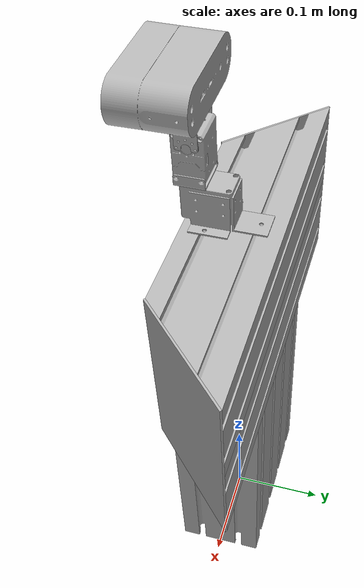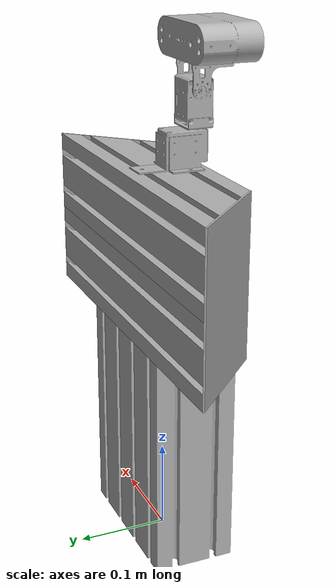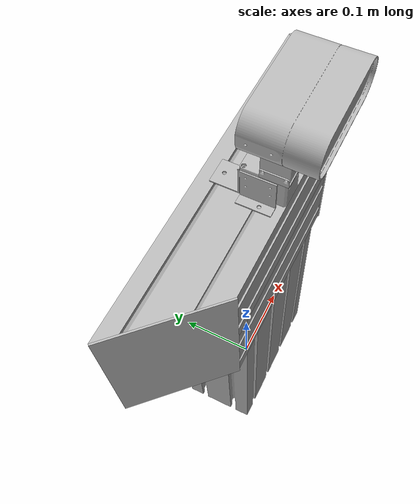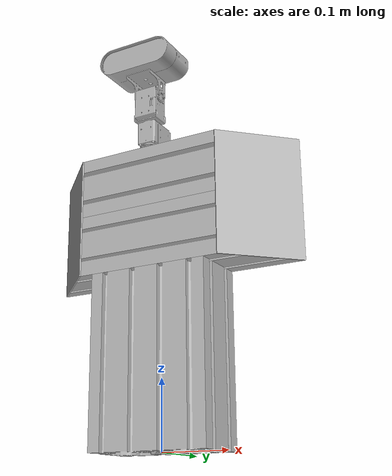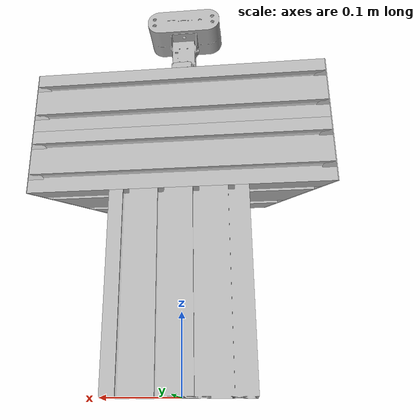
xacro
<?xml version="1.0" ?>
<robot name="no_arm_isaac" xmlns:xacro="http://www.ros.org/wiki/xacro">

<xacro:include filename="$(find no_arm_isaac_description)/urdf/materials.xacro" />
<xacro:include filename="$(find no_arm_isaac_description)/urdf/no_arm_isaac.trans" />
<xacro:include filename="$(find no_arm_isaac_description)/urdf/no_arm_isaac.gazebo" />
<link name="base_link">
  <inertial>
    <origin xyz="-1.1199098829630538e-09 -7.816768965557578e-10 0.12500000000153696" rpy="0 0 0"/>
    <mass value="7.696230008793844"/>
    <inertia ixx="0.047505" iyy="0.06309" izz="0.030426" ixy="0.0" iyz="0.0" ixz="-0.0"/>
  </inertial>
  <visual>
    <origin xyz="0 0 0" rpy="0 0 0"/>
    <geometry>
      <mesh filename="file://$(find no_arm_isaac_description)/meshes/base_link.stl" scale="0.001 0.001 0.001"/>
    </geometry>
    <material name="silver"/>
  </visual>
  <collision>
    <origin xyz="0 0 0" rpy="0 0 0"/>
    <geometry>
      <mesh filename="file://$(find no_arm_isaac_description)/meshes/base_link.stl" scale="0.001 0.001 0.001"/>
    </geometry>
  </collision>
</link>

<link name="under_body_1">
  <inertial>
    <origin xyz="-5.013647926527235e-08 0.00622055079965131 0.04499999302709212" rpy="0 0 0"/>
    <mass value="4.771661651159625"/>
    <inertia ixx="0.009017" iyy="0.047415" izz="0.04723" ixy="-0.0" iyz="-0.0" ixz="0.0"/>
  </inertial>
  <visual>
    <origin xyz="-0.0 0.0 -0.25" rpy="0 0 0"/>
    <geometry>
      <mesh filename="file://$(find no_arm_isaac_description)/meshes/under_body_1.stl" scale="0.001 0.001 0.001"/>
    </geometry>
    <material name="silver"/>
  </visual>
  <collision>
    <origin xyz="-0.0 0.0 -0.25" rpy="0 0 0"/>
    <geometry>
      <mesh filename="file://$(find no_arm_isaac_description)/meshes/under_body_1.stl" scale="0.001 0.001 0.001"/>
    </geometry>
  </collision>
</link>

<link name="upper_body_1">
  <inertial>
    <origin xyz="-9.306588989029795e-15 0.006220550236925543 0.04499999920685571" rpy="0 0 0"/>
    <mass value="4.771662083263037"/>
    <inertia ixx="0.009017" iyy="0.047415" izz="0.04723" ixy="0.0" iyz="-0.0" ixz="0.0"/>
  </inertial>
  <visual>
    <origin xyz="0.0 -0.0 -0.34" rpy="0 0 0"/>
    <geometry>
      <mesh filename="file://$(find no_arm_isaac_description)/meshes/upper_body_1.stl" scale="0.001 0.001 0.001"/>
    </geometry>
    <material name="silver"/>
  </visual>
  <collision>
    <origin xyz="0.0 -0.0 -0.34" rpy="0 0 0"/>
    <geometry>
      <mesh filename="file://$(find no_arm_isaac_description)/meshes/upper_body_1.stl" scale="0.001 0.001 0.001"/>
    </geometry>
  </collision>
</link>

<link name="right_arm_1">
  <inertial>
    <origin xyz="-0.0007070887026282835 -0.000707106780450988 2.1871393585115584e-14" rpy="0 0 0"/>
    <mass value="0.3596940231860905"/>
    <inertia ixx="0.001214" iyy="0.001214" izz="0.000486" ixy="0.000243" iyz="-0.0" ixz="-0.0"/>
  </inertial>
  <visual>
    <origin xyz="0.155 -0.0 -0.34" rpy="0 0 0"/>
    <geometry>
      <mesh filename="file://$(find no_arm_isaac_description)/meshes/right_arm_1.stl" scale="0.001 0.001 0.001"/>
    </geometry>
    <material name="silver"/>
  </visual>
  <collision>
    <origin xyz="0.155 -0.0 -0.34" rpy="0 0 0"/>
    <geometry>
      <mesh filename="file://$(find no_arm_isaac_description)/meshes/right_arm_1.stl" scale="0.001 0.001 0.001"/>
    </geometry>
  </collision>
</link>

<link name="left_arm_1">
  <inertial>
    <origin xyz="0.0007070887026179862 -0.0007071067804561445 2.015054789694659e-14" rpy="0 0 0"/>
    <mass value="0.359751805477637"/>
    <inertia ixx="0.001214" iyy="0.001214" izz="0.000486" ixy="-0.000243" iyz="-0.0" ixz="-0.0"/>
  </inertial>
  <visual>
    <origin xyz="-0.155 -0.0 -0.34" rpy="0 0 0"/>
    <geometry>
      <mesh filename="file://$(find no_arm_isaac_description)/meshes/left_arm_1.stl" scale="0.001 0.001 0.001"/>
    </geometry>
    <material name="silver"/>
  </visual>
  <collision>
    <origin xyz="-0.155 -0.0 -0.34" rpy="0 0 0"/>
    <geometry>
      <mesh filename="file://$(find no_arm_isaac_description)/meshes/left_arm_1.stl" scale="0.001 0.001 0.001"/>
    </geometry>
  </collision>
</link>

<link name="under_neck_1">
  <inertial>
    <origin xyz="4.102805954806092e-11 -0.047894475375877724 0.021824682493119807" rpy="0 0 0"/>
    <mass value="0.40441713327413076"/>
    <inertia ixx="0.000136" iyy="8.2e-05" izz="0.000121" ixy="-0.0" iyz="1.1e-05" ixz="0.0"/>
  </inertial>
  <visual>
    <origin xyz="0.0 -0.0266 -0.43" rpy="0 0 0"/>
    <geometry>
      <mesh filename="file://$(find no_arm_isaac_description)/meshes/under_neck_1.stl" scale="0.001 0.001 0.001"/>
    </geometry>
    <material name="silver"/>
  </visual>
  <collision>
    <origin xyz="0.0 -0.0266 -0.43" rpy="0 0 0"/>
    <geometry>
      <mesh filename="file://$(find no_arm_isaac_description)/meshes/under_neck_1.stl" scale="0.001 0.001 0.001"/>
    </geometry>
  </collision>
</link>

<link name="uppper_neck_1">
  <inertial>
    <origin xyz="-0.0003753387200590366 4.733411579360691e-11 0.027704213117066778" rpy="0 0 0"/>
    <mass value="0.360913776197752"/>
    <inertia ixx="9.5e-05" iyy="0.000109" izz="6e-05" ixy="-0.0" iyz="0.0" ixz="0.0"/>
  </inertial>
  <visual>
    <origin xyz="0.0 0.035 -0.472" rpy="0 0 0"/>
    <geometry>
      <mesh filename="file://$(find no_arm_isaac_description)/meshes/uppper_neck_1.stl" scale="0.001 0.001 0.001"/>
    </geometry>
    <material name="silver"/>
  </visual>
  <collision>
    <origin xyz="0.0 0.035 -0.472" rpy="0 0 0"/>
    <geometry>
      <mesh filename="file://$(find no_arm_isaac_description)/meshes/uppper_neck_1.stl" scale="0.001 0.001 0.001"/>
    </geometry>
  </collision>
</link>

<link name="head_1">
  <inertial>
    <origin xyz="0.01900075934955458 -0.017054257253195808 0.04732392012922049" rpy="0 0 0"/>
    <mass value="1.841200882296232"/>
    <inertia ixx="0.000774" iyy="0.002034" izz="0.002299" ixy="1e-06" iyz="1e-05" ixz="-0.0"/>
  </inertial>
  <visual>
    <origin xyz="0.019 0.035 -0.5125" rpy="0 0 0"/>
    <geometry>
      <mesh filename="file://$(find no_arm_isaac_description)/meshes/head_1.stl" scale="0.001 0.001 0.001"/>
    </geometry>
    <material name="silver"/>
  </visual>
  <collision>
    <origin xyz="0.019 0.035 -0.5125" rpy="0 0 0"/>
    <geometry>
      <mesh filename="file://$(find no_arm_isaac_description)/meshes/head_1.stl" scale="0.001 0.001 0.001"/>
    </geometry>
  </collision>
</link>

<joint name="fix_1" type="fixed">
  <origin xyz="0.0 0.0 0.25" rpy="0 0 0"/>
  <parent link="base_link"/>
  <child link="under_body_1"/>
</joint>

<joint name="fix_2" type="fixed">
  <origin xyz="-0.0 0.0 0.09" rpy="0 0 0"/>
  <parent link="under_body_1"/>
  <child link="upper_body_1"/>
</joint>

<joint name="r_fix" type="fixed">
  <origin xyz="-0.155 0.0 0.0" rpy="0 0 0"/>
  <parent link="upper_body_1"/>
  <child link="right_arm_1"/>
</joint>

<joint name="l_fix" type="fixed">
  <origin xyz="0.155 0.0 0.0" rpy="0 0 0"/>
  <parent link="upper_body_1"/>
  <child link="left_arm_1"/>
</joint>

<joint name="h_fix" type="fixed">
  <origin xyz="0.0 0.0266 0.09" rpy="0 0 0"/>
  <parent link="upper_body_1"/>
  <child link="under_neck_1"/>
</joint>

<joint name="neck_down" type="revolute">
  <origin xyz="0.0 -0.0616 0.042" rpy="0 0 0"/>
  <parent link="under_neck_1"/>
  <child link="uppper_neck_1"/>
  <axis xyz="0.0 0.0 1.0"/>
  <limit upper="0.785398" lower="-0.785398" effort="100" velocity="100"/>
</joint>

<joint name="neck_up" type="revolute">
  <origin xyz="-0.019 0.0 0.0405" rpy="0 0 0"/>
  <parent link="uppper_neck_1"/>
  <child link="head_1"/>
  <axis xyz="-1.0 0.0 -0.0"/>
  <limit upper="0.959931" lower="-1.48353" effort="100" velocity="100"/>
</joint>

</robot>

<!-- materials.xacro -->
<robot name="no_arm_isaac" xmlns:xacro="http://www.ros.org/wiki/xacro" >

<material name="silver">
  <color rgba="0.700 0.700 0.700 1.000"/>
</material>

</robot>

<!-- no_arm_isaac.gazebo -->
<robot name="no_arm_isaac" xmlns:xacro="http://www.ros.org/wiki/xacro" >

<xacro:property name="body_color" value="Gazebo/Silver" />

<gazebo>
  <plugin name="control" filename="libgazebo_ros_control.so"/>
</gazebo>
<gazebo reference="base_link">
  <material>${body_color}</material>
  <mu1>0.2</mu1>
  <mu2>0.2</mu2>
  <self_collide>true</self_collide>
  <gravity>true</gravity>
</gazebo>

<gazebo reference="under_body_1">
  <material>${body_color}</material>
  <mu1>0.2</mu1>
  <mu2>0.2</mu2>
  <self_collide>true</self_collide>
</gazebo>

<gazebo reference="upper_body_1">
  <material>${body_color}</material>
  <mu1>0.2</mu1>
  <mu2>0.2</mu2>
  <self_collide>true</self_collide>
</gazebo>

<gazebo reference="right_arm_1">
  <material>${body_color}</material>
  <mu1>0.2</mu1>
  <mu2>0.2</mu2>
  <self_collide>true</self_collide>
</gazebo>

<gazebo reference="left_arm_1">
  <material>${body_color}</material>
  <mu1>0.2</mu1>
  <mu2>0.2</mu2>
  <self_collide>true</self_collide>
</gazebo>

<gazebo reference="under_neck_1">
  <material>${body_color}</material>
  <mu1>0.2</mu1>
  <mu2>0.2</mu2>
  <self_collide>true</self_collide>
</gazebo>

<gazebo reference="uppper_neck_1">
  <material>${body_color}</material>
  <mu1>0.2</mu1>
  <mu2>0.2</mu2>
  <self_collide>true</self_collide>
</gazebo>

<gazebo reference="head_1">
  <material>${body_color}</material>
  <mu1>0.2</mu1>
  <mu2>0.2</mu2>
  <self_collide>true</self_collide>
</gazebo>

</robot>
